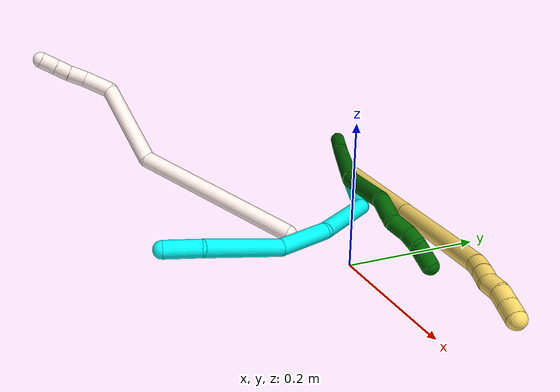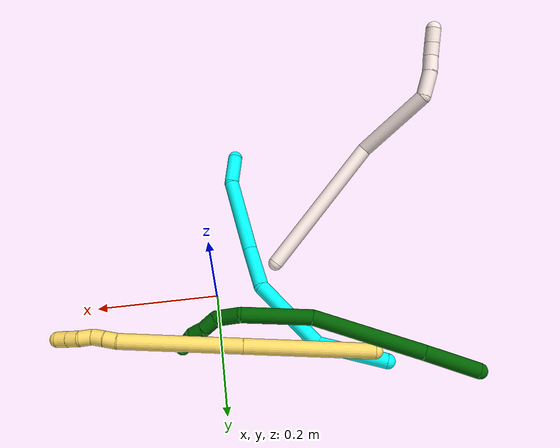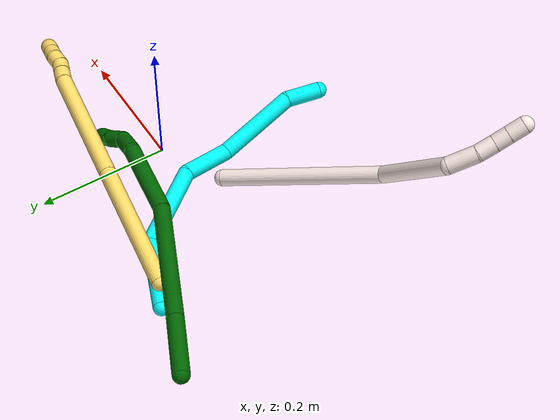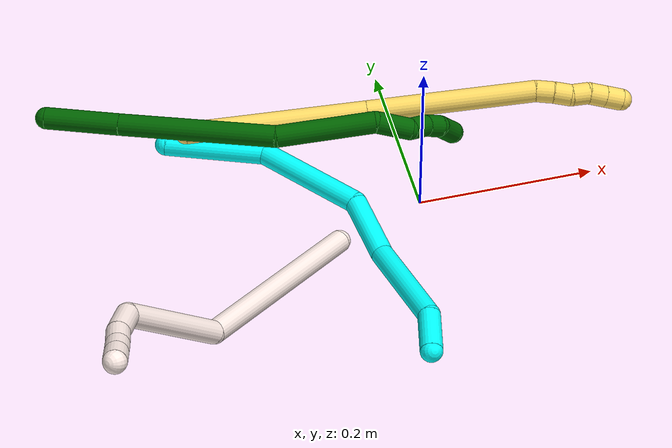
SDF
<sdf version="1.7">
 <world name="default">
  <model name="3">
   <static>0</static>
   <link name="3">
    <collision name="collision-cylinder-e_1_1_4">
     <pose>0.014779 -0.050533 0.021248 1.17276 0.26334 0.17551</pose>
     <geometry><cylinder><radius>0.0125</radius><length>0.113553</length></cylinder></geometry>
     <surface>
      <friction><ode><mu>1.16</mu><mu2>1.16</mu2><slip1>0</slip1><slip2>0</slip2></ode></friction>
      <contact><ode><kp>1e+06</kp><kd>1</kd><max_vel>0</max_vel><min_depth>0.001</min_depth></ode></contact>
     </surface>
    </collision>
    <visual name="visual-cylinder-e_1_1_4">
     <pose>0.014779 -0.050533 0.021248 1.17276 0.26334 0.17551</pose>
     <geometry><cylinder><radius>0.0125</radius><length>0.113553</length></cylinder></geometry>
     <material><ambient>0.003922 1 0.996078 1</ambient></material>
    </visual>
    <collision name="collision-cylinder-e_2_4_5">
     <pose>0.017499 -0.148931 0.086615 0.826099 -0.183187 -0.080466</pose>
     <geometry><cylinder><radius>0.0125</radius><length>0.132406</length></cylinder></geometry>
     <surface>
      <friction><ode><mu>1.16</mu><mu2>1.16</mu2><slip1>0</slip1><slip2>0</slip2></ode></friction>
      <contact><ode><kp>1e+06</kp><kd>1</kd><max_vel>0</max_vel><min_depth>0.001</min_depth></ode></contact>
     </surface>
    </collision>
    <visual name="visual-cylinder-e_2_4_5">
     <pose>0.017499 -0.148931 0.086615 0.826099 -0.183187 -0.080466</pose>
     <geometry><cylinder><radius>0.0125</radius><length>0.132406</length></cylinder></geometry>
     <material><ambient>0.003922 1 0.996078 1</ambient></material>
    </visual>
    <collision name="collision-cylinder-e_3_5_6">
     <pose>-0.018791 -0.215366 0.153352 0.687455 -0.691547 -0.256475</pose>
     <geometry><cylinder><radius>0.0125</radius><length>0.075988</length></cylinder></geometry>
     <surface>
      <friction><ode><mu>1.16</mu><mu2>1.16</mu2><slip1>0</slip1><slip2>0</slip2></ode></friction>
      <contact><ode><kp>1e+06</kp><kd>1</kd><max_vel>0</max_vel><min_depth>0.001</min_depth></ode></contact>
     </surface>
    </collision>
    <visual name="visual-cylinder-e_3_5_6">
     <pose>-0.018791 -0.215366 0.153352 0.687455 -0.691547 -0.256475</pose>
     <geometry><cylinder><radius>0.0125</radius><length>0.075988</length></cylinder></geometry>
     <material><ambient>0.003922 1 0.996078 1</ambient></material>
    </visual>
    <collision name="collision-cylinder-e_4_6_7">
     <pose>-0.071154 -0.254926 0.228369 0.380989 -0.462368 -0.090721</pose>
     <geometry><cylinder><radius>0.0125</radius><length>0.126137</length></cylinder></geometry>
     <surface>
      <friction><ode><mu>1.16</mu><mu2>1.16</mu2><slip1>0</slip1><slip2>0</slip2></ode></friction>
      <contact><ode><kp>1e+06</kp><kd>1</kd><max_vel>0</max_vel><min_depth>0.001</min_depth></ode></contact>
     </surface>
    </collision>
    <visual name="visual-cylinder-e_4_6_7">
     <pose>-0.071154 -0.254926 0.228369 0.380989 -0.462368 -0.090721</pose>
     <geometry><cylinder><radius>0.0125</radius><length>0.126137</length></cylinder></geometry>
     <material><ambient>0.003922 1 0.996078 1</ambient></material>
    </visual>
    <collision name="collision-cylinder-e_5_7_2">
     <pose>-0.11877 -0.278882 0.297661 0.173828 -0.848956 -0.07872</pose>
     <geometry><cylinder><radius>0.0125</radius><length>0.051916</length></cylinder></geometry>
     <surface>
      <friction><ode><mu>1.16</mu><mu2>1.16</mu2><slip1>0</slip1><slip2>0</slip2></ode></friction>
      <contact><ode><kp>1e+06</kp><kd>1</kd><max_vel>0</max_vel><min_depth>0.001</min_depth></ode></contact>
     </surface>
    </collision>
    <visual name="visual-cylinder-e_5_7_2">
     <pose>-0.11877 -0.278882 0.297661 0.173828 -0.848956 -0.07872</pose>
     <geometry><cylinder><radius>0.0125</radius><length>0.051916</length></cylinder></geometry>
     <material><ambient>0.003922 1 0.996078 1</ambient></material>
    </visual>
    <collision name="collision-sphere-2">
     <pose>-0.138254 -0.281848 0.314555 0 -0 0</pose>
     <geometry><sphere><radius>0.0125</radius></sphere></geometry>
     <surface>
      <friction><ode><mu>1.16</mu><mu2>1.16</mu2><slip1>0</slip1><slip2>0</slip2></ode></friction>
      <contact><ode><kp>1e+06</kp><kd>1</kd><max_vel>0</max_vel><min_depth>0.001</min_depth></ode></contact>
     </surface>
    </collision>
    <visual name="visual-sphere-2">
     <pose>-0.138254 -0.281848 0.314555 0 -0 0</pose>
     <geometry><sphere><radius>0.0125</radius></sphere></geometry>
     <material><ambient>0.003922 1 0.996078 1</ambient></material>
    </visual>
    <collision name="collision-sphere-7">
     <pose>-0.099287 -0.275915 0.280767 0 -0 0</pose>
     <geometry><sphere><radius>0.0125</radius></sphere></geometry>
     <surface>
      <friction><ode><mu>1.16</mu><mu2>1.16</mu2><slip1>0</slip1><slip2>0</slip2></ode></friction>
      <contact><ode><kp>1e+06</kp><kd>1</kd><max_vel>0</max_vel><min_depth>0.001</min_depth></ode></contact>
     </surface>
    </collision>
    <visual name="visual-sphere-7">
     <pose>-0.099287 -0.275915 0.280767 0 -0 0</pose>
     <geometry><sphere><radius>0.0125</radius></sphere></geometry>
     <material><ambient>0.003922 1 0.996078 1</ambient></material>
    </visual>
    <collision name="collision-sphere-6">
     <pose>-0.043021 -0.233937 0.17597 0 -0 0</pose>
     <geometry><sphere><radius>0.0125</radius></sphere></geometry>
     <surface>
      <friction><ode><mu>1.16</mu><mu2>1.16</mu2><slip1>0</slip1><slip2>0</slip2></ode></friction>
      <contact><ode><kp>1e+06</kp><kd>1</kd><max_vel>0</max_vel><min_depth>0.001</min_depth></ode></contact>
     </surface>
    </collision>
    <visual name="visual-sphere-6">
     <pose>-0.043021 -0.233937 0.17597 0 -0 0</pose>
     <geometry><sphere><radius>0.0125</radius></sphere></geometry>
     <material><ambient>0.003922 1 0.996078 1</ambient></material>
    </visual>
    <collision name="collision-sphere-5">
     <pose>0.005439 -0.196795 0.130734 0 -0 0</pose>
     <geometry><sphere><radius>0.0125</radius></sphere></geometry>
     <surface>
      <friction><ode><mu>1.16</mu><mu2>1.16</mu2><slip1>0</slip1><slip2>0</slip2></ode></friction>
      <contact><ode><kp>1e+06</kp><kd>1</kd><max_vel>0</max_vel><min_depth>0.001</min_depth></ode></contact>
     </surface>
    </collision>
    <visual name="visual-sphere-5">
     <pose>0.005439 -0.196795 0.130734 0 -0 0</pose>
     <geometry><sphere><radius>0.0125</radius></sphere></geometry>
     <material><ambient>0.003922 1 0.996078 1</ambient></material>
    </visual>
    <collision name="collision-sphere-1">
     <geometry><sphere><radius>0.0125</radius></sphere></geometry>
     <surface>
      <friction><ode><mu>1.16</mu><mu2>1.16</mu2><slip1>0</slip1><slip2>0</slip2></ode></friction>
      <contact><ode><kp>1e+06</kp><kd>1</kd><max_vel>0</max_vel><min_depth>0.001</min_depth></ode></contact>
     </surface>
    </collision>
    <visual name="visual-sphere-1">
     <geometry><sphere><radius>0.0125</radius></sphere></geometry>
     <material><ambient>0.003922 1 0.996078 1</ambient></material>
    </visual>
    <collision name="collision-sphere-4">
     <pose>0.029559 -0.101067 0.042497 0 -0 0</pose>
     <geometry><sphere><radius>0.0125</radius></sphere></geometry>
     <surface>
      <friction><ode><mu>1.16</mu><mu2>1.16</mu2><slip1>0</slip1><slip2>0</slip2></ode></friction>
      <contact><ode><kp>1e+06</kp><kd>1</kd><max_vel>0</max_vel><min_depth>0.001</min_depth></ode></contact>
     </surface>
    </collision>
    <visual name="visual-sphere-4">
     <pose>0.029559 -0.101067 0.042497 0 -0 0</pose>
     <geometry><sphere><radius>0.0125</radius></sphere></geometry>
     <material><ambient>0.003922 1 0.996078 1</ambient></material>
    </visual>
    <inertial>
     <pose>-0.025148 -0.176914 0.139586 0 -0 0</pose>
     <mass>0.5</mass>
     <inertia>
      <ixx>0.000479</ixx>
      <ixy>0</ixy>
      <ixz>0</ixz>
      <iyy>0.00036</iyy>
      <iyz>0</iyz>
      <izz>0.000474</izz>
     </inertia>
    </inertial>
   </link>
   <pose>-0.259978 0.146013 0.011474 0.555743 -0.52759 0.897884</pose>
  </model>
  <model name="5">
   <static>0</static>
   <link name="5">
    <collision name="collision-cylinder-e_1_1_4">
     <pose>0.048495 -0.027913 0.086456 0.312295 0.490313 0.078733</pose>
     <geometry><cylinder><radius>0.0125</radius><length>0.205966</length></cylinder></geometry>
     <surface>
      <friction><ode><mu>1.16</mu><mu2>1.16</mu2><slip1>0</slip1><slip2>0</slip2></ode></friction>
      <contact><ode><kp>1e+06</kp><kd>1</kd><max_vel>0</max_vel><min_depth>0.001</min_depth></ode></contact>
     </surface>
    </collision>
    <visual name="visual-cylinder-e_1_1_4">
     <pose>0.048495 -0.027913 0.086456 0.312295 0.490313 0.078733</pose>
     <geometry><cylinder><radius>0.0125</radius><length>0.205966</length></cylinder></geometry>
     <material><ambient>1 0.858824 0.4 1</ambient></material>
    </visual>
    <collision name="collision-cylinder-e_2_4_5">
     <pose>0.142325 -0.081935 0.253834 0.312092 0.489828 0.0786</pose>
     <geometry><cylinder><radius>0.0125</radius><length>0.192721</length></cylinder></geometry>
     <surface>
      <friction><ode><mu>1.16</mu><mu2>1.16</mu2><slip1>0</slip1><slip2>0</slip2></ode></friction>
      <contact><ode><kp>1e+06</kp><kd>1</kd><max_vel>0</max_vel><min_depth>0.001</min_depth></ode></contact>
     </surface>
    </collision>
    <visual name="visual-cylinder-e_2_4_5">
     <pose>0.142325 -0.081935 0.253834 0.312092 0.489828 0.0786</pose>
     <geometry><cylinder><radius>0.0125</radius><length>0.192721</length></cylinder></geometry>
     <material><ambient>1 0.858824 0.4 1</ambient></material>
    </visual>
    <collision name="collision-cylinder-e_3_5_6">
     <pose>0.191187 -0.112528 0.343463 0.475671 0.3457 0.0846</pose>
     <geometry><cylinder><radius>0.0125</radius><length>0.02082</length></cylinder></geometry>
     <surface>
      <friction><ode><mu>1.16</mu><mu2>1.16</mu2><slip1>0</slip1><slip2>0</slip2></ode></friction>
      <contact><ode><kp>1e+06</kp><kd>1</kd><max_vel>0</max_vel><min_depth>0.001</min_depth></ode></contact>
     </surface>
    </collision>
    <visual name="visual-cylinder-e_3_5_6">
     <pose>0.191187 -0.112528 0.343463 0.475671 0.3457 0.0846</pose>
     <geometry><cylinder><radius>0.0125</radius><length>0.02082</length></cylinder></geometry>
     <material><ambient>1 0.858824 0.4 1</ambient></material>
    </visual>
    <collision name="collision-cylinder-e_4_6_7">
     <pose>0.198155 -0.12217 0.360106 0.576188 0.348636 0.104279</pose>
     <geometry><cylinder><radius>0.0125</radius><length>0.020142</length></cylinder></geometry>
     <surface>
      <friction><ode><mu>1.16</mu><mu2>1.16</mu2><slip1>0</slip1><slip2>0</slip2></ode></friction>
      <contact><ode><kp>1e+06</kp><kd>1</kd><max_vel>0</max_vel><min_depth>0.001</min_depth></ode></contact>
     </surface>
    </collision>
    <visual name="visual-cylinder-e_4_6_7">
     <pose>0.198155 -0.12217 0.360106 0.576188 0.348636 0.104279</pose>
     <geometry><cylinder><radius>0.0125</radius><length>0.020142</length></cylinder></geometry>
     <material><ambient>1 0.858824 0.4 1</ambient></material>
    </visual>
    <collision name="collision-cylinder-e_5_7_8">
     <pose>0.207841 -0.130632 0.375296 0.427634 0.664648 0.149598</pose>
     <geometry><cylinder><radius>0.0125</radius><length>0.020252</length></cylinder></geometry>
     <surface>
      <friction><ode><mu>1.16</mu><mu2>1.16</mu2><slip1>0</slip1><slip2>0</slip2></ode></friction>
      <contact><ode><kp>1e+06</kp><kd>1</kd><max_vel>0</max_vel><min_depth>0.001</min_depth></ode></contact>
     </surface>
    </collision>
    <visual name="visual-cylinder-e_5_7_8">
     <pose>0.207841 -0.130632 0.375296 0.427634 0.664648 0.149598</pose>
     <geometry><cylinder><radius>0.0125</radius><length>0.020252</length></cylinder></geometry>
     <material><ambient>1 0.858824 0.4 1</ambient></material>
    </visual>
    <collision name="collision-cylinder-e_6_8_9">
     <pose>0.219002 -0.139847 0.388981 0.743072 0.512556 0.203493</pose>
     <geometry><cylinder><radius>0.0125</radius><length>0.020045</length></cylinder></geometry>
     <surface>
      <friction><ode><mu>1.16</mu><mu2>1.16</mu2><slip1>0</slip1><slip2>0</slip2></ode></friction>
      <contact><ode><kp>1e+06</kp><kd>1</kd><max_vel>0</max_vel><min_depth>0.001</min_depth></ode></contact>
     </surface>
    </collision>
    <visual name="visual-cylinder-e_6_8_9">
     <pose>0.219002 -0.139847 0.388981 0.743072 0.512556 0.203493</pose>
     <geometry><cylinder><radius>0.0125</radius><length>0.020045</length></cylinder></geometry>
     <material><ambient>1 0.858824 0.4 1</ambient></material>
    </visual>
    <collision name="collision-cylinder-e_7_9_2">
     <pose>0.228826 -0.151671 0.401853 0.742906 0.511603 0.203051</pose>
     <geometry><cylinder><radius>0.0125</radius><length>0.020054</length></cylinder></geometry>
     <surface>
      <friction><ode><mu>1.16</mu><mu2>1.16</mu2><slip1>0</slip1><slip2>0</slip2></ode></friction>
      <contact><ode><kp>1e+06</kp><kd>1</kd><max_vel>0</max_vel><min_depth>0.001</min_depth></ode></contact>
     </surface>
    </collision>
    <visual name="visual-cylinder-e_7_9_2">
     <pose>0.228826 -0.151671 0.401853 0.742906 0.511603 0.203051</pose>
     <geometry><cylinder><radius>0.0125</radius><length>0.020054</length></cylinder></geometry>
     <material><ambient>1 0.858824 0.4 1</ambient></material>
    </visual>
    <collision name="collision-sphere-2">
     <pose>0.233735 -0.157585 0.408292 0 -0 0</pose>
     <geometry><sphere><radius>0.0125</radius></sphere></geometry>
     <surface>
      <friction><ode><mu>1.16</mu><mu2>1.16</mu2><slip1>0</slip1><slip2>0</slip2></ode></friction>
      <contact><ode><kp>1e+06</kp><kd>1</kd><max_vel>0</max_vel><min_depth>0.001</min_depth></ode></contact>
     </surface>
    </collision>
    <visual name="visual-sphere-2">
     <pose>0.233735 -0.157585 0.408292 0 -0 0</pose>
     <geometry><sphere><radius>0.0125</radius></sphere></geometry>
     <material><ambient>1 0.858824 0.4 1</ambient></material>
    </visual>
    <collision name="collision-sphere-9">
     <pose>0.223917 -0.145757 0.395413 0 -0 0</pose>
     <geometry><sphere><radius>0.0125</radius></sphere></geometry>
     <surface>
      <friction><ode><mu>1.16</mu><mu2>1.16</mu2><slip1>0</slip1><slip2>0</slip2></ode></friction>
      <contact><ode><kp>1e+06</kp><kd>1</kd><max_vel>0</max_vel><min_depth>0.001</min_depth></ode></contact>
     </surface>
    </collision>
    <visual name="visual-sphere-9">
     <pose>0.223917 -0.145757 0.395413 0 -0 0</pose>
     <geometry><sphere><radius>0.0125</radius></sphere></geometry>
     <material><ambient>1 0.858824 0.4 1</ambient></material>
    </visual>
    <collision name="collision-sphere-4">
     <pose>0.09699 -0.055826 0.172911 0 -0 0</pose>
     <geometry><sphere><radius>0.0125</radius></sphere></geometry>
     <surface>
      <friction><ode><mu>1.16</mu><mu2>1.16</mu2><slip1>0</slip1><slip2>0</slip2></ode></friction>
      <contact><ode><kp>1e+06</kp><kd>1</kd><max_vel>0</max_vel><min_depth>0.001</min_depth></ode></contact>
     </surface>
    </collision>
    <visual name="visual-sphere-4">
     <pose>0.09699 -0.055826 0.172911 0 -0 0</pose>
     <geometry><sphere><radius>0.0125</radius></sphere></geometry>
     <material><ambient>1 0.858824 0.4 1</ambient></material>
    </visual>
    <collision name="collision-sphere-1">
     <geometry><sphere><radius>0.0125</radius></sphere></geometry>
     <surface>
      <friction><ode><mu>1.16</mu><mu2>1.16</mu2><slip1>0</slip1><slip2>0</slip2></ode></friction>
      <contact><ode><kp>1e+06</kp><kd>1</kd><max_vel>0</max_vel><min_depth>0.001</min_depth></ode></contact>
     </surface>
    </collision>
    <visual name="visual-sphere-1">
     <geometry><sphere><radius>0.0125</radius></sphere></geometry>
     <material><ambient>1 0.858824 0.4 1</ambient></material>
    </visual>
    <collision name="collision-sphere-8">
     <pose>0.214087 -0.133938 0.382549 0 -0 0</pose>
     <geometry><sphere><radius>0.0125</radius></sphere></geometry>
     <surface>
      <friction><ode><mu>1.16</mu><mu2>1.16</mu2><slip1>0</slip1><slip2>0</slip2></ode></friction>
      <contact><ode><kp>1e+06</kp><kd>1</kd><max_vel>0</max_vel><min_depth>0.001</min_depth></ode></contact>
     </surface>
    </collision>
    <visual name="visual-sphere-8">
     <pose>0.214087 -0.133938 0.382549 0 -0 0</pose>
     <geometry><sphere><radius>0.0125</radius></sphere></geometry>
     <material><ambient>1 0.858824 0.4 1</ambient></material>
    </visual>
    <collision name="collision-sphere-5">
     <pose>0.18766 -0.108043 0.334756 0 -0 0</pose>
     <geometry><sphere><radius>0.0125</radius></sphere></geometry>
     <surface>
      <friction><ode><mu>1.16</mu><mu2>1.16</mu2><slip1>0</slip1><slip2>0</slip2></ode></friction>
      <contact><ode><kp>1e+06</kp><kd>1</kd><max_vel>0</max_vel><min_depth>0.001</min_depth></ode></contact>
     </surface>
    </collision>
    <visual name="visual-sphere-5">
     <pose>0.18766 -0.108043 0.334756 0 -0 0</pose>
     <geometry><sphere><radius>0.0125</radius></sphere></geometry>
     <material><ambient>1 0.858824 0.4 1</ambient></material>
    </visual>
    <collision name="collision-sphere-6">
     <pose>0.194715 -0.117013 0.35217 0 -0 0</pose>
     <geometry><sphere><radius>0.0125</radius></sphere></geometry>
     <surface>
      <friction><ode><mu>1.16</mu><mu2>1.16</mu2><slip1>0</slip1><slip2>0</slip2></ode></friction>
      <contact><ode><kp>1e+06</kp><kd>1</kd><max_vel>0</max_vel><min_depth>0.001</min_depth></ode></contact>
     </surface>
    </collision>
    <visual name="visual-sphere-6">
     <pose>0.194715 -0.117013 0.35217 0 -0 0</pose>
     <geometry><sphere><radius>0.0125</radius></sphere></geometry>
     <material><ambient>1 0.858824 0.4 1</ambient></material>
    </visual>
    <collision name="collision-sphere-7">
     <pose>0.201596 -0.127327 0.368043 0 -0 0</pose>
     <geometry><sphere><radius>0.0125</radius></sphere></geometry>
     <surface>
      <friction><ode><mu>1.16</mu><mu2>1.16</mu2><slip1>0</slip1><slip2>0</slip2></ode></friction>
      <contact><ode><kp>1e+06</kp><kd>1</kd><max_vel>0</max_vel><min_depth>0.001</min_depth></ode></contact>
     </surface>
    </collision>
    <visual name="visual-sphere-7">
     <pose>0.201596 -0.127327 0.368043 0 -0 0</pose>
     <geometry><sphere><radius>0.0125</radius></sphere></geometry>
     <material><ambient>1 0.858824 0.4 1</ambient></material>
    </visual>
    <inertial>
     <pose>0.117154 -0.069667 0.209173 0 -0 0</pose>
     <mass>0.5</mass>
     <inertia>
      <ixx>0.001297</ixx>
      <ixy>0</ixy>
      <ixz>0</ixz>
      <iyy>0.001375</iyy>
      <iyz>0</iyz>
      <izz>-0.000235</izz>
     </inertia>
    </inertial>
   </link>
   <pose>-0.238152 0.134973 0.035627 1.05393 0.242842 0.912</pose>
  </model>
  <model name="6">
   <static>0</static>
   <link name="6">
    <collision name="collision-cylinder-e_1_1_4">
     <pose>0.014713 0.000679 -0.040504 -3.12484 0.34839 -3.04648</pose>
     <geometry><cylinder><radius>0.0125</radius><length>0.086198</length></cylinder></geometry>
     <surface>
      <friction><ode><mu>1.16</mu><mu2>1.16</mu2><slip1>0</slip1><slip2>0</slip2></ode></friction>
      <contact><ode><kp>1e+06</kp><kd>1</kd><max_vel>0</max_vel><min_depth>0.001</min_depth></ode></contact>
     </surface>
    </collision>
    <visual name="visual-cylinder-e_1_1_4">
     <pose>0.014713 0.000679 -0.040504 -3.12484 0.34839 -3.04648</pose>
     <geometry><cylinder><radius>0.0125</radius><length>0.086198</length></cylinder></geometry>
     <material><ambient>0 0.392157 0.003922 1</ambient></material>
    </visual>
    <collision name="collision-cylinder-e_2_4_5">
     <pose>0.061445 0.002638 -0.16481 -3.12631 0.364915 -3.05881</pose>
     <geometry><cylinder><radius>0.0125</radius><length>0.179439</length></cylinder></geometry>
     <surface>
      <friction><ode><mu>1.16</mu><mu2>1.16</mu2><slip1>0</slip1><slip2>0</slip2></ode></friction>
      <contact><ode><kp>1e+06</kp><kd>1</kd><max_vel>0</max_vel><min_depth>0.001</min_depth></ode></contact>
     </surface>
    </collision>
    <visual name="visual-cylinder-e_2_4_5">
     <pose>0.061445 0.002638 -0.16481 -3.12631 0.364915 -3.05881</pose>
     <geometry><cylinder><radius>0.0125</radius><length>0.179439</length></cylinder></geometry>
     <material><ambient>0 0.392157 0.003922 1</ambient></material>
    </visual>
    <collision name="collision-cylinder-e_3_5_6">
     <pose>0.127236 0.000555 -0.293247 3.06637 0.646373 2.91783</pose>
     <geometry><cylinder><radius>0.0125</radius><length>0.112146</length></cylinder></geometry>
     <surface>
      <friction><ode><mu>1.16</mu><mu2>1.16</mu2><slip1>0</slip1><slip2>0</slip2></ode></friction>
      <contact><ode><kp>1e+06</kp><kd>1</kd><max_vel>0</max_vel><min_depth>0.001</min_depth></ode></contact>
     </surface>
    </collision>
    <visual name="visual-cylinder-e_3_5_6">
     <pose>0.127236 0.000555 -0.293247 3.06637 0.646373 2.91783</pose>
     <geometry><cylinder><radius>0.0125</radius><length>0.112146</length></cylinder></geometry>
     <material><ambient>0 0.392157 0.003922 1</ambient></material>
    </visual>
    <collision name="collision-cylinder-e_4_6_7">
     <pose>0.174368 0.005328 -0.352046 -2.62014 0.685555 -1.85765</pose>
     <geometry><cylinder><radius>0.0125</radius><length>0.042204</length></cylinder></geometry>
     <surface>
      <friction><ode><mu>1.16</mu><mu2>1.16</mu2><slip1>0</slip1><slip2>0</slip2></ode></friction>
      <contact><ode><kp>1e+06</kp><kd>1</kd><max_vel>0</max_vel><min_depth>0.001</min_depth></ode></contact>
     </surface>
    </collision>
    <visual name="visual-cylinder-e_4_6_7">
     <pose>0.174368 0.005328 -0.352046 -2.62014 0.685555 -1.85765</pose>
     <geometry><cylinder><radius>0.0125</radius><length>0.042204</length></cylinder></geometry>
     <material><ambient>0 0.392157 0.003922 1</ambient></material>
    </visual>
    <collision name="collision-cylinder-e_5_7_8">
     <pose>0.199973 0.017448 -0.368954 -2.17419 1.19457 -1.82628</pose>
     <geometry><cylinder><radius>0.0125</radius><length>0.026333</length></cylinder></geometry>
     <surface>
      <friction><ode><mu>1.16</mu><mu2>1.16</mu2><slip1>0</slip1><slip2>0</slip2></ode></friction>
      <contact><ode><kp>1e+06</kp><kd>1</kd><max_vel>0</max_vel><min_depth>0.001</min_depth></ode></contact>
     </surface>
    </collision>
    <visual name="visual-cylinder-e_5_7_8">
     <pose>0.199973 0.017448 -0.368954 -2.17419 1.19457 -1.82628</pose>
     <geometry><cylinder><radius>0.0125</radius><length>0.026333</length></cylinder></geometry>
     <material><ambient>0 0.392157 0.003922 1</ambient></material>
    </visual>
    <collision name="collision-cylinder-e_6_8_9">
     <pose>0.220674 0.025552 -0.376056 -2.38395 0.953895 -1.82886</pose>
     <geometry><cylinder><radius>0.0125</radius><length>0.020733</length></cylinder></geometry>
     <surface>
      <friction><ode><mu>1.16</mu><mu2>1.16</mu2><slip1>0</slip1><slip2>0</slip2></ode></friction>
      <contact><ode><kp>1e+06</kp><kd>1</kd><max_vel>0</max_vel><min_depth>0.001</min_depth></ode></contact>
     </surface>
    </collision>
    <visual name="visual-cylinder-e_6_8_9">
     <pose>0.220674 0.025552 -0.376056 -2.38395 0.953895 -1.82886</pose>
     <geometry><cylinder><radius>0.0125</radius><length>0.020733</length></cylinder></geometry>
     <material><ambient>0 0.392157 0.003922 1</ambient></material>
    </visual>
    <collision name="collision-cylinder-e_7_9_2">
     <pose>0.241359 0.04064 -0.381666 -1.68458 0.836531 -0.924388</pose>
     <geometry><cylinder><radius>0.0125</radius><length>0.032947</length></cylinder></geometry>
     <surface>
      <friction><ode><mu>1.16</mu><mu2>1.16</mu2><slip1>0</slip1><slip2>0</slip2></ode></friction>
      <contact><ode><kp>1e+06</kp><kd>1</kd><max_vel>0</max_vel><min_depth>0.001</min_depth></ode></contact>
     </surface>
    </collision>
    <visual name="visual-cylinder-e_7_9_2">
     <pose>0.241359 0.04064 -0.381666 -1.68458 0.836531 -0.924388</pose>
     <geometry><cylinder><radius>0.0125</radius><length>0.032947</length></cylinder></geometry>
     <material><ambient>0 0.392157 0.003922 1</ambient></material>
    </visual>
    <collision name="collision-sphere-2">
     <pose>0.253588 0.051607 -0.382919 0 -0 0</pose>
     <geometry><sphere><radius>0.0125</radius></sphere></geometry>
     <surface>
      <friction><ode><mu>1.16</mu><mu2>1.16</mu2><slip1>0</slip1><slip2>0</slip2></ode></friction>
      <contact><ode><kp>1e+06</kp><kd>1</kd><max_vel>0</max_vel><min_depth>0.001</min_depth></ode></contact>
     </surface>
    </collision>
    <visual name="visual-sphere-2">
     <pose>0.253588 0.051607 -0.382919 0 -0 0</pose>
     <geometry><sphere><radius>0.0125</radius></sphere></geometry>
     <material><ambient>0 0.392157 0.003922 1</ambient></material>
    </visual>
    <collision name="collision-sphere-9">
     <pose>0.22913 0.029674 -0.380413 0 -0 0</pose>
     <geometry><sphere><radius>0.0125</radius></sphere></geometry>
     <surface>
      <friction><ode><mu>1.16</mu><mu2>1.16</mu2><slip1>0</slip1><slip2>0</slip2></ode></friction>
      <contact><ode><kp>1e+06</kp><kd>1</kd><max_vel>0</max_vel><min_depth>0.001</min_depth></ode></contact>
     </surface>
    </collision>
    <visual name="visual-sphere-9">
     <pose>0.22913 0.029674 -0.380413 0 -0 0</pose>
     <geometry><sphere><radius>0.0125</radius></sphere></geometry>
     <material><ambient>0 0.392157 0.003922 1</ambient></material>
    </visual>
    <collision name="collision-sphere-4">
     <pose>0.029427 0.001357 -0.081008 0 -0 0</pose>
     <geometry><sphere><radius>0.0125</radius></sphere></geometry>
     <surface>
      <friction><ode><mu>1.16</mu><mu2>1.16</mu2><slip1>0</slip1><slip2>0</slip2></ode></friction>
      <contact><ode><kp>1e+06</kp><kd>1</kd><max_vel>0</max_vel><min_depth>0.001</min_depth></ode></contact>
     </surface>
    </collision>
    <visual name="visual-sphere-4">
     <pose>0.029427 0.001357 -0.081008 0 -0 0</pose>
     <geometry><sphere><radius>0.0125</radius></sphere></geometry>
     <material><ambient>0 0.392157 0.003922 1</ambient></material>
    </visual>
    <collision name="collision-sphere-1">
     <geometry><sphere><radius>0.0125</radius></sphere></geometry>
     <surface>
      <friction><ode><mu>1.16</mu><mu2>1.16</mu2><slip1>0</slip1><slip2>0</slip2></ode></friction>
      <contact><ode><kp>1e+06</kp><kd>1</kd><max_vel>0</max_vel><min_depth>0.001</min_depth></ode></contact>
     </surface>
    </collision>
    <visual name="visual-sphere-1">
     <geometry><sphere><radius>0.0125</radius></sphere></geometry>
     <material><ambient>0 0.392157 0.003922 1</ambient></material>
    </visual>
    <collision name="collision-sphere-8">
     <pose>0.212218 0.021431 -0.371699 0 -0 0</pose>
     <geometry><sphere><radius>0.0125</radius></sphere></geometry>
     <surface>
      <friction><ode><mu>1.16</mu><mu2>1.16</mu2><slip1>0</slip1><slip2>0</slip2></ode></friction>
      <contact><ode><kp>1e+06</kp><kd>1</kd><max_vel>0</max_vel><min_depth>0.001</min_depth></ode></contact>
     </surface>
    </collision>
    <visual name="visual-sphere-8">
     <pose>0.212218 0.021431 -0.371699 0 -0 0</pose>
     <geometry><sphere><radius>0.0125</radius></sphere></geometry>
     <material><ambient>0 0.392157 0.003922 1</ambient></material>
    </visual>
    <collision name="collision-sphere-5">
     <pose>0.093463 0.003919 -0.248612 0 -0 0</pose>
     <geometry><sphere><radius>0.0125</radius></sphere></geometry>
     <surface>
      <friction><ode><mu>1.16</mu><mu2>1.16</mu2><slip1>0</slip1><slip2>0</slip2></ode></friction>
      <contact><ode><kp>1e+06</kp><kd>1</kd><max_vel>0</max_vel><min_depth>0.001</min_depth></ode></contact>
     </surface>
    </collision>
    <visual name="visual-sphere-5">
     <pose>0.093463 0.003919 -0.248612 0 -0 0</pose>
     <geometry><sphere><radius>0.0125</radius></sphere></geometry>
     <material><ambient>0 0.392157 0.003922 1</ambient></material>
    </visual>
    <collision name="collision-sphere-6">
     <pose>0.161008 -0.002809 -0.337882 0 -0 0</pose>
     <geometry><sphere><radius>0.0125</radius></sphere></geometry>
     <surface>
      <friction><ode><mu>1.16</mu><mu2>1.16</mu2><slip1>0</slip1><slip2>0</slip2></ode></friction>
      <contact><ode><kp>1e+06</kp><kd>1</kd><max_vel>0</max_vel><min_depth>0.001</min_depth></ode></contact>
     </surface>
    </collision>
    <visual name="visual-sphere-6">
     <pose>0.161008 -0.002809 -0.337882 0 -0 0</pose>
     <geometry><sphere><radius>0.0125</radius></sphere></geometry>
     <material><ambient>0 0.392157 0.003922 1</ambient></material>
    </visual>
    <collision name="collision-sphere-7">
     <pose>0.187728 0.013464 -0.366209 0 -0 0</pose>
     <geometry><sphere><radius>0.0125</radius></sphere></geometry>
     <surface>
      <friction><ode><mu>1.16</mu><mu2>1.16</mu2><slip1>0</slip1><slip2>0</slip2></ode></friction>
      <contact><ode><kp>1e+06</kp><kd>1</kd><max_vel>0</max_vel><min_depth>0.001</min_depth></ode></contact>
     </surface>
    </collision>
    <visual name="visual-sphere-7">
     <pose>0.187728 0.013464 -0.366209 0 -0 0</pose>
     <geometry><sphere><radius>0.0125</radius></sphere></geometry>
     <material><ambient>0 0.392157 0.003922 1</ambient></material>
    </visual>
    <inertial>
     <pose>0.10343 0.006294 -0.221792 0 -0 0</pose>
     <mass>0.5</mass>
     <inertia>
      <ixx>-0.000615</ixx>
      <ixy>0</ixy>
      <ixz>0</ixz>
      <iyy>0.000646</iyy>
      <iyz>0</iyz>
      <izz>-0.000317</izz>
     </inertia>
    </inertial>
   </link>
   <pose>-0.388334 0.18675 0.045697 -1.72338 0.16358 0.774194</pose>
  </model>
  <model name="11">
   <static>0</static>
   <link name="11">
    <collision name="collision-cylinder-e_1_1_4">
     <pose>-0.02277 -0.005513 0.123184 0.044721 -0.182603 -0.004095</pose>
     <geometry><cylinder><radius>0.0125</radius><length>0.250784</length></cylinder></geometry>
     <surface>
      <friction><ode><mu>1.16</mu><mu2>1.16</mu2><slip1>0</slip1><slip2>0</slip2></ode></friction>
      <contact><ode><kp>1e+06</kp><kd>1</kd><max_vel>0</max_vel><min_depth>0.001</min_depth></ode></contact>
     </surface>
    </collision>
    <visual name="visual-cylinder-e_1_1_4">
     <pose>-0.02277 -0.005513 0.123184 0.044721 -0.182603 -0.004095</pose>
     <geometry><cylinder><radius>0.0125</radius><length>0.250784</length></cylinder></geometry>
     <material><ambient>1 0.933333 0.909804 1</ambient></material>
    </visual>
    <collision name="collision-cylinder-e_2_4_5">
     <pose>-0.021427 -0.013459 0.308788 0.03898 0.36838 0.007263</pose>
     <geometry><cylinder><radius>0.0125</radius><length>0.133919</length></cylinder></geometry>
     <surface>
      <friction><ode><mu>1.16</mu><mu2>1.16</mu2><slip1>0</slip1><slip2>0</slip2></ode></friction>
      <contact><ode><kp>1e+06</kp><kd>1</kd><max_vel>0</max_vel><min_depth>0.001</min_depth></ode></contact>
     </surface>
    </collision>
    <visual name="visual-cylinder-e_2_4_5">
     <pose>-0.021427 -0.013459 0.308788 0.03898 0.36838 0.007263</pose>
     <geometry><cylinder><radius>0.0125</radius><length>0.133919</length></cylinder></geometry>
     <material><ambient>1 0.933333 0.909804 1</ambient></material>
    </visual>
    <collision name="collision-cylinder-e_3_5_6">
     <pose>-0.002948 -0.024774 0.38998 0.441876 -0.264893 -0.059829</pose>
     <geometry><cylinder><radius>0.0125</radius><length>0.043034</length></cylinder></geometry>
     <surface>
      <friction><ode><mu>1.16</mu><mu2>1.16</mu2><slip1>0</slip1><slip2>0</slip2></ode></friction>
      <contact><ode><kp>1e+06</kp><kd>1</kd><max_vel>0</max_vel><min_depth>0.001</min_depth></ode></contact>
     </surface>
    </collision>
    <visual name="visual-cylinder-e_3_5_6">
     <pose>-0.002948 -0.024774 0.38998 0.441876 -0.264893 -0.059829</pose>
     <geometry><cylinder><radius>0.0125</radius><length>0.043034</length></cylinder></geometry>
     <material><ambient>1 0.933333 0.909804 1</ambient></material>
    </visual>
    <collision name="collision-cylinder-e_4_6_7">
     <pose>-0.012982 -0.040937 0.418605 0.636446 -0.344799 -0.114596</pose>
     <geometry><cylinder><radius>0.0125</radius><length>0.026037</length></cylinder></geometry>
     <surface>
      <friction><ode><mu>1.16</mu><mu2>1.16</mu2><slip1>0</slip1><slip2>0</slip2></ode></friction>
      <contact><ode><kp>1e+06</kp><kd>1</kd><max_vel>0</max_vel><min_depth>0.001</min_depth></ode></contact>
     </surface>
    </collision>
    <visual name="visual-cylinder-e_4_6_7">
     <pose>-0.012982 -0.040937 0.418605 0.636446 -0.344799 -0.114596</pose>
     <geometry><cylinder><radius>0.0125</radius><length>0.026037</length></cylinder></geometry>
     <material><ambient>1 0.933333 0.909804 1</ambient></material>
    </visual>
    <collision name="collision-cylinder-e_5_7_8">
     <pose>-0.020097 -0.054434 0.437089 0.624061 -0.249918 -0.080993</pose>
     <geometry><cylinder><radius>0.0125</radius><length>0.021954</length></cylinder></geometry>
     <surface>
      <friction><ode><mu>1.16</mu><mu2>1.16</mu2><slip1>0</slip1><slip2>0</slip2></ode></friction>
      <contact><ode><kp>1e+06</kp><kd>1</kd><max_vel>0</max_vel><min_depth>0.001</min_depth></ode></contact>
     </surface>
    </collision>
    <visual name="visual-cylinder-e_5_7_8">
     <pose>-0.020097 -0.054434 0.437089 0.624061 -0.249918 -0.080993</pose>
     <geometry><cylinder><radius>0.0125</radius><length>0.021954</length></cylinder></geometry>
     <material><ambient>1 0.933333 0.909804 1</ambient></material>
    </visual>
    <collision name="collision-cylinder-e_6_8_2">
     <pose>-0.025749 -0.06752 0.455283 0.623061 -0.244441 -0.079067</pose>
     <geometry><cylinder><radius>0.0125</radius><length>0.024272</length></cylinder></geometry>
     <surface>
      <friction><ode><mu>1.16</mu><mu2>1.16</mu2><slip1>0</slip1><slip2>0</slip2></ode></friction>
      <contact><ode><kp>1e+06</kp><kd>1</kd><max_vel>0</max_vel><min_depth>0.001</min_depth></ode></contact>
     </surface>
    </collision>
    <visual name="visual-cylinder-e_6_8_2">
     <pose>-0.025749 -0.06752 0.455283 0.623061 -0.244441 -0.079067</pose>
     <geometry><cylinder><radius>0.0125</radius><length>0.024272</length></cylinder></geometry>
     <material><ambient>1 0.933333 0.909804 1</ambient></material>
    </visual>
    <collision name="collision-sphere-2">
     <pose>-0.028686 -0.074391 0.464846 0 -0 0</pose>
     <geometry><sphere><radius>0.0125</radius></sphere></geometry>
     <surface>
      <friction><ode><mu>1.16</mu><mu2>1.16</mu2><slip1>0</slip1><slip2>0</slip2></ode></friction>
      <contact><ode><kp>1e+06</kp><kd>1</kd><max_vel>0</max_vel><min_depth>0.001</min_depth></ode></contact>
     </surface>
    </collision>
    <visual name="visual-sphere-2">
     <pose>-0.028686 -0.074391 0.464846 0 -0 0</pose>
     <geometry><sphere><radius>0.0125</radius></sphere></geometry>
     <material><ambient>1 0.933333 0.909804 1</ambient></material>
    </visual>
    <collision name="collision-sphere-4">
     <pose>-0.04554 -0.011025 0.246368 0 -0 0</pose>
     <geometry><sphere><radius>0.0125</radius></sphere></geometry>
     <surface>
      <friction><ode><mu>1.16</mu><mu2>1.16</mu2><slip1>0</slip1><slip2>0</slip2></ode></friction>
      <contact><ode><kp>1e+06</kp><kd>1</kd><max_vel>0</max_vel><min_depth>0.001</min_depth></ode></contact>
     </surface>
    </collision>
    <visual name="visual-sphere-4">
     <pose>-0.04554 -0.011025 0.246368 0 -0 0</pose>
     <geometry><sphere><radius>0.0125</radius></sphere></geometry>
     <material><ambient>1 0.933333 0.909804 1</ambient></material>
    </visual>
    <collision name="collision-sphere-1">
     <geometry><sphere><radius>0.0125</radius></sphere></geometry>
     <surface>
      <friction><ode><mu>1.16</mu><mu2>1.16</mu2><slip1>0</slip1><slip2>0</slip2></ode></friction>
      <contact><ode><kp>1e+06</kp><kd>1</kd><max_vel>0</max_vel><min_depth>0.001</min_depth></ode></contact>
     </surface>
    </collision>
    <visual name="visual-sphere-1">
     <geometry><sphere><radius>0.0125</radius></sphere></geometry>
     <material><ambient>1 0.933333 0.909804 1</ambient></material>
    </visual>
    <collision name="collision-sphere-8">
     <pose>-0.022812 -0.060649 0.445721 0 -0 0</pose>
     <geometry><sphere><radius>0.0125</radius></sphere></geometry>
     <surface>
      <friction><ode><mu>1.16</mu><mu2>1.16</mu2><slip1>0</slip1><slip2>0</slip2></ode></friction>
      <contact><ode><kp>1e+06</kp><kd>1</kd><max_vel>0</max_vel><min_depth>0.001</min_depth></ode></contact>
     </surface>
    </collision>
    <visual name="visual-sphere-8">
     <pose>-0.022812 -0.060649 0.445721 0 -0 0</pose>
     <geometry><sphere><radius>0.0125</radius></sphere></geometry>
     <material><ambient>1 0.933333 0.909804 1</ambient></material>
    </visual>
    <collision name="collision-sphere-5">
     <pose>0.002685 -0.015894 0.371207 0 -0 0</pose>
     <geometry><sphere><radius>0.0125</radius></sphere></geometry>
     <surface>
      <friction><ode><mu>1.16</mu><mu2>1.16</mu2><slip1>0</slip1><slip2>0</slip2></ode></friction>
      <contact><ode><kp>1e+06</kp><kd>1</kd><max_vel>0</max_vel><min_depth>0.001</min_depth></ode></contact>
     </surface>
    </collision>
    <visual name="visual-sphere-5">
     <pose>0.002685 -0.015894 0.371207 0 -0 0</pose>
     <geometry><sphere><radius>0.0125</radius></sphere></geometry>
     <material><ambient>1 0.933333 0.909804 1</ambient></material>
    </visual>
    <collision name="collision-sphere-6">
     <pose>-0.008582 -0.033655 0.408752 0 -0 0</pose>
     <geometry><sphere><radius>0.0125</radius></sphere></geometry>
     <surface>
      <friction><ode><mu>1.16</mu><mu2>1.16</mu2><slip1>0</slip1><slip2>0</slip2></ode></friction>
      <contact><ode><kp>1e+06</kp><kd>1</kd><max_vel>0</max_vel><min_depth>0.001</min_depth></ode></contact>
     </surface>
    </collision>
    <visual name="visual-sphere-6">
     <pose>-0.008582 -0.033655 0.408752 0 -0 0</pose>
     <geometry><sphere><radius>0.0125</radius></sphere></geometry>
     <material><ambient>1 0.933333 0.909804 1</ambient></material>
    </visual>
    <collision name="collision-sphere-7">
     <pose>-0.017382 -0.048219 0.428458 0 -0 0</pose>
     <geometry><sphere><radius>0.0125</radius></sphere></geometry>
     <surface>
      <friction><ode><mu>1.16</mu><mu2>1.16</mu2><slip1>0</slip1><slip2>0</slip2></ode></friction>
      <contact><ode><kp>1e+06</kp><kd>1</kd><max_vel>0</max_vel><min_depth>0.001</min_depth></ode></contact>
     </surface>
    </collision>
    <visual name="visual-sphere-7">
     <pose>-0.017382 -0.048219 0.428458 0 -0 0</pose>
     <geometry><sphere><radius>0.0125</radius></sphere></geometry>
     <material><ambient>1 0.933333 0.909804 1</ambient></material>
    </visual>
    <inertial>
     <pose>-0.020222 -0.016302 0.241146 0 -0 0</pose>
     <mass>0.5</mass>
     <inertia>
      <ixx>0.001501</ixx>
      <ixy>0</ixy>
      <ixz>0</ixz>
      <iyy>0.00153</iyy>
      <iyz>0</iyz>
      <izz>0.000279</izz>
     </inertia>
    </inertial>
   </link>
   <pose>-0.10441 -0.044768 0.011841 -0.909103 -0.790676 1.65836</pose>
  </model>
 </world>
</sdf>
